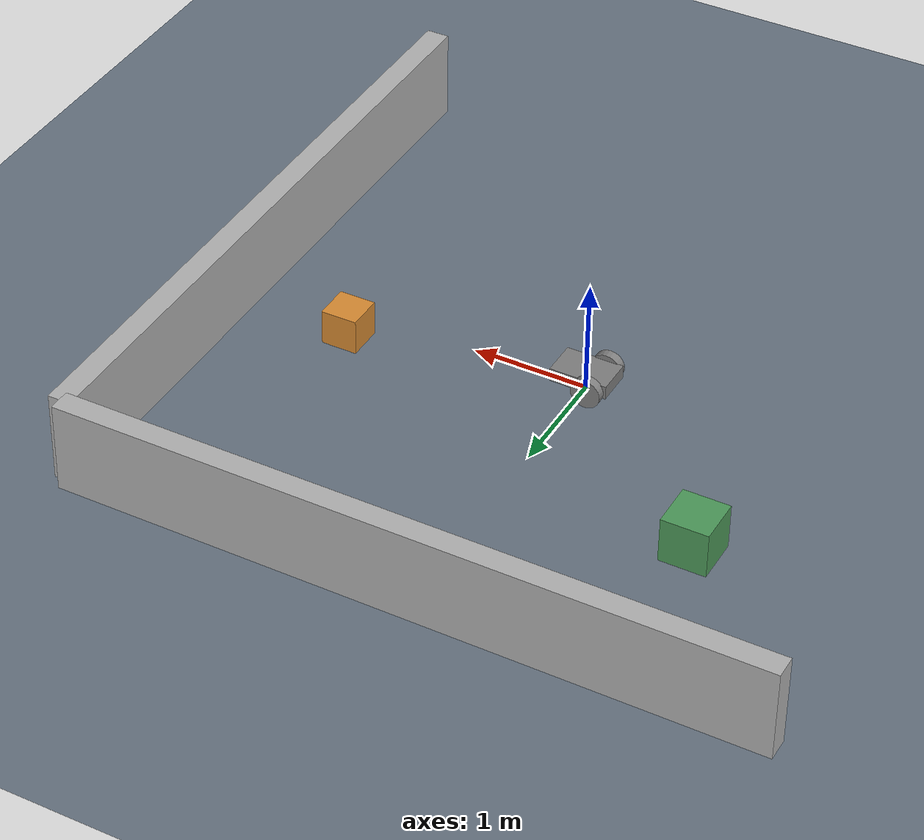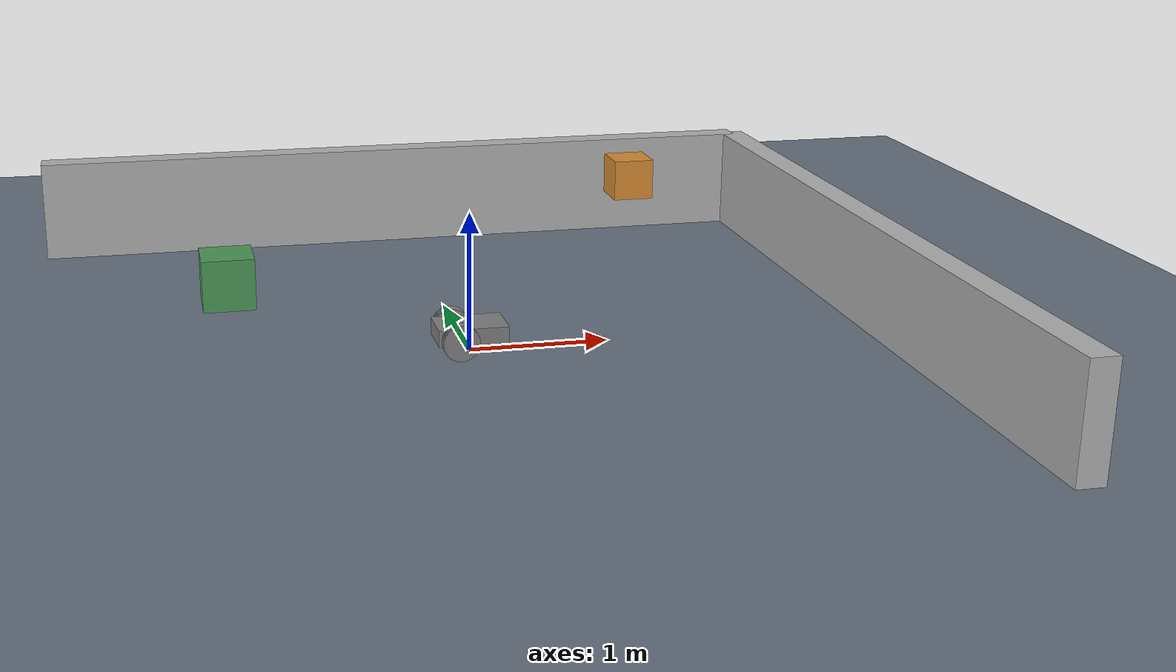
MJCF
<mujoco model="agentbench_bringup">
  <option timestep="0.002" integrator="implicitfast"/>
  <compiler autolimits="true"/>

  <default>
    <geom friction="1.0 0.005 0.0001"/>
  </default>

  <worldbody>
    <light pos="0 0 3" dir="0 0 -1"/>
    <camera name="overview" pos="-3 -3 2.5" xyaxes="0.707 -0.707 0 0.3 0.3 0.9"
            fovy="55" resolution="1280 720"/>

    <geom name="floor" type="plane" size="6 6 0.1" rgba="0.4 0.45 0.5 1"/>
    <geom name="wall_north" type="box" pos="0 3 0.4" size="3 0.1 0.4"
          rgba="0.7 0.7 0.7 1"/>
    <geom name="wall_east" type="box" pos="3 0 0.4" size="0.1 3 0.4"
          rgba="0.7 0.7 0.7 1"/>

    <body name="rover" pos="0 0 0.15">
      <freejoint name="rover_free"/>
      <geom name="chassis" type="box" size="0.25 0.16 0.06" mass="6"/>
      <geom name="caster" type="sphere" pos="0.22 0 -0.09" size="0.055"
            mass="0.2" friction="0.02 0.005 0.0001"/>
      <body name="wheel_left" pos="-0.1 0.19 -0.02">
        <joint name="wheel_left_joint" type="hinge" axis="0 1 0"/>
        <geom name="wheel_left_tyre" type="cylinder" size="0.13 0.04"
              quat="0.7071068 0.7071068 0 0" mass="0.8"/>
      </body>
      <body name="wheel_right" pos="-0.1 -0.19 -0.02">
        <joint name="wheel_right_joint" type="hinge" axis="0 1 0"/>
        <geom name="wheel_right_tyre" type="cylinder" size="0.13 0.04"
              quat="0.7071068 0.7071068 0 0" mass="0.8"/>
      </body>
    </body>

    <body name="dropped_box" pos="1.5 1.2 0.9">
      <freejoint name="dropped_box_free"/>
      <geom name="dropped_box_geom" type="box" size="0.15 0.15 0.15"
            mass="2" rgba="0.85 0.55 0.2 1"/>
    </body>

    <body name="parked_crate" pos="-1.6 1.4 0.2">
      <freejoint name="parked_crate_free"/>
      <geom name="parked_crate_geom" type="box" size="0.2 0.2 0.2" mass="3"
            rgba="0.3 0.6 0.35 1"/>
    </body>
  </worldbody>

  <actuator>
    <velocity name="wheel_left_motor" joint="wheel_left_joint" kv="18"
              ctrlrange="-25 25"/>
    <velocity name="wheel_right_motor" joint="wheel_right_joint" kv="18"
              ctrlrange="-25 25"/>
  </actuator>
</mujoco>
